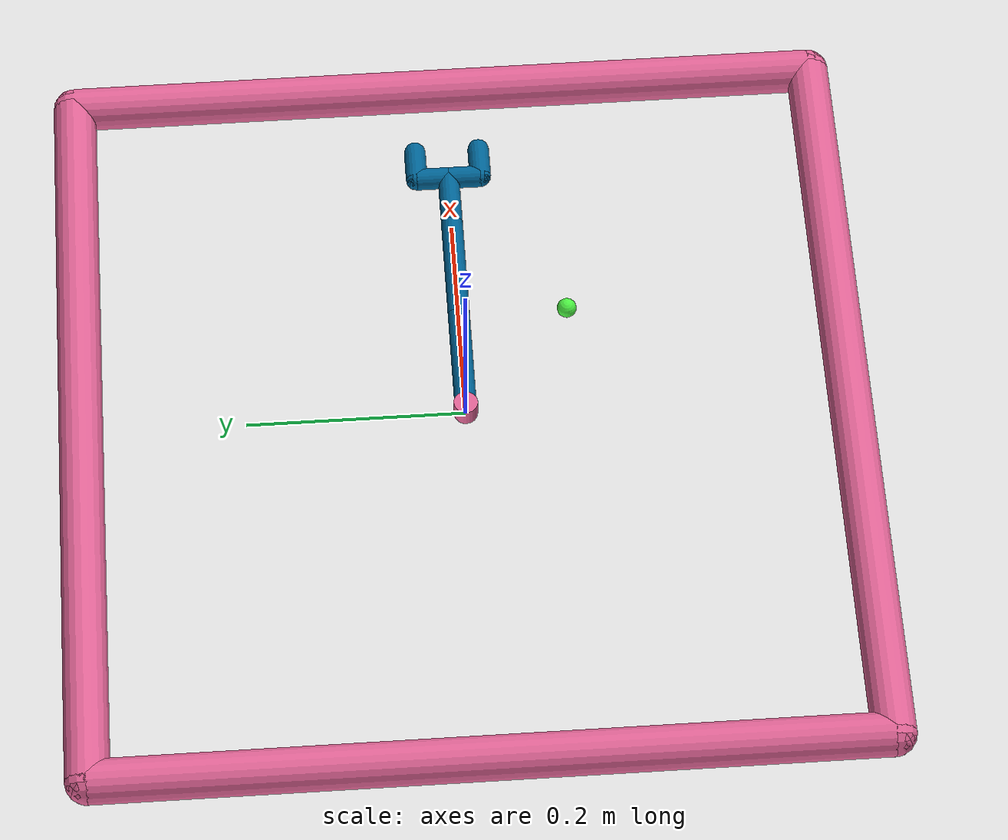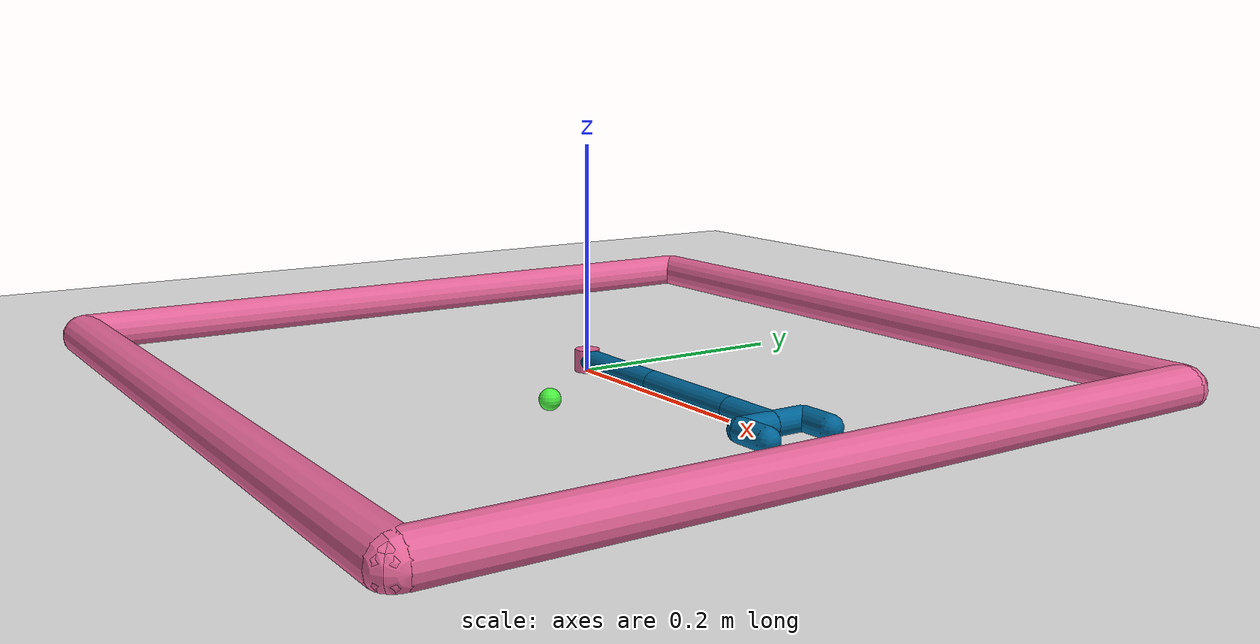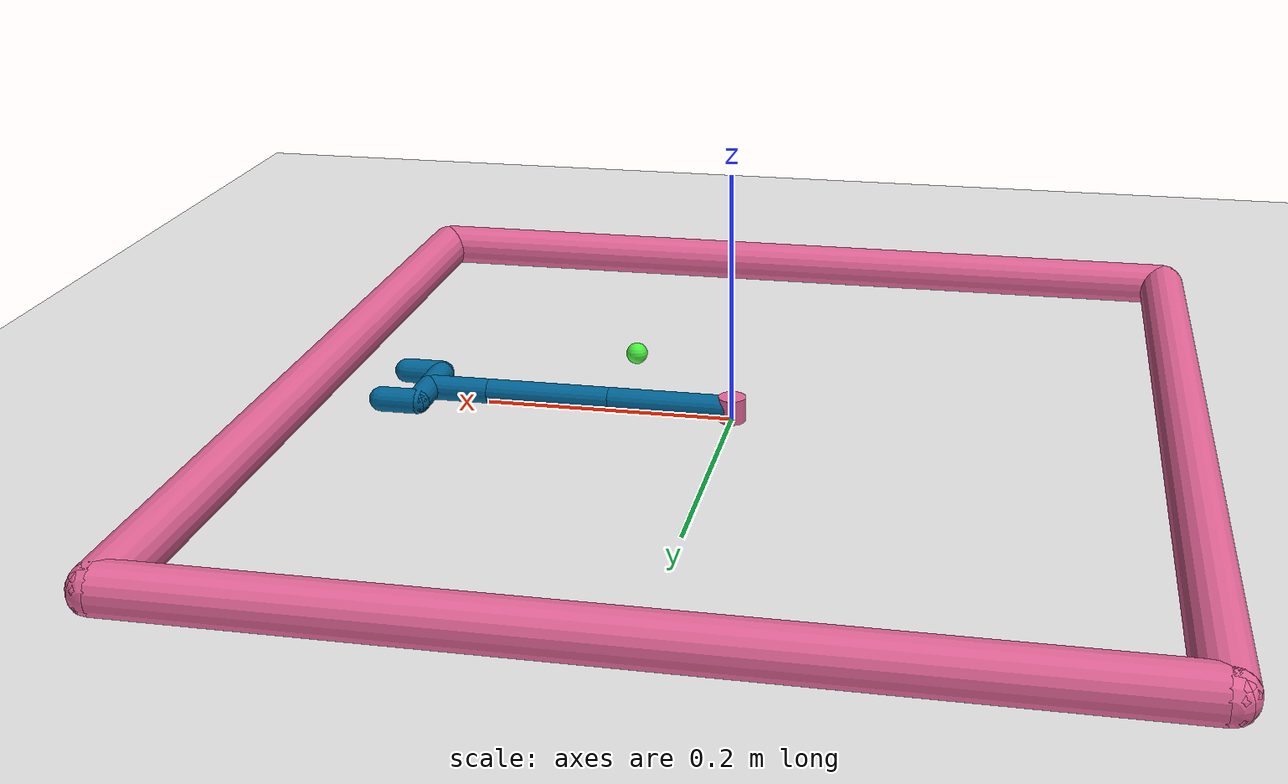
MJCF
<mujoco model="gripper">
	<compiler angle="radian" inertiafromgeom="true"/>
	<default>
		<joint armature="1" damping="1" limited="true"/>
		<geom contype="0" condim="3" friction="1 0.1 0.1" rgba="0.7 0.7 0 1"/>
	</default>
	<option gravity="0 0 -9.81" integrator="RK4" timestep="0.01"/>
	<worldbody>
		<!-- Arena -->
		<geom conaffinity="0" contype="0" name="ground" pos="0 0 0" rgba="0.9 0.9 0.9 1" size="1 1 10" type="plane"/>
		<geom conaffinity="0" fromto="-.35 -.35 .01 .35 -.35 .01" name="sideS" rgba="0.9 0.4 0.6 1" size=".02" type="capsule"/>
		<geom conaffinity="0" fromto=" .35 -.35 .01 .35  .35 .01" name="sideE" rgba="0.9 0.4 0.6 1" size=".02" type="capsule"/>
		<geom conaffinity="0" fromto="-.35  .35 .01 .35  .35 .01" name="sideN" rgba="0.9 0.4 0.6 1" size=".02" type="capsule"/>
		<geom conaffinity="0" fromto="-.35 -.35 .01 -.35 .35 .01" name="sideW" rgba="0.9 0.4 0.6 1" size=".02" type="capsule"/>
		<!-- Arm -->
		<geom conaffinity="0" contype="0" fromto="0 0 0 0 0 0.02" name="root" rgba="0.9 0.4 0.6 1" size=".011" type="cylinder"/>
		<body name="body0" pos="0 0 .01">
			<geom conaffinity="1" contype="1" fromto="0 0 0 0.1 0 0" name="link0" rgba="0.0 0.4 0.6 1" size=".01" type="capsule"/>
			<joint axis="0 0 1" limited="false" name="joint0" pos="0 0 0" type="hinge"/>
			<body name="body1" pos="0.1 0 0">
				<joint axis="0 0 1" limited="true" name="joint1" pos="0 0 0" range="-3.0 3.0" type="hinge"/>
				<geom conaffinity="1" contype="1" fromto="0 0 0 0.1 0 0" name="link1" rgba="0.0 0.4 0.6 1" size=".01" type="capsule"/>
				<body name="body2" pos="0.1 0 0">
					<joint axis="0 0 1" limited="true" name="joint2" pos="0 0 0" range="-3.0 3.0" type="hinge"/>
					<geom fromto="0 0 0 0.05 0 0" name="link2" rgba="0.0 0.4 0.6 1" size=".01" type="capsule"/>
					<body name="gripper_left" pos="0.05 0 0">
						<joint axis="0 0 1" limited="true" name="joint_gripper_left" pos="0 0 0" range="-0.785 0" type="hinge"/>
						<geom conaffinity="1" contype="1" name="gripper_left_1" fromto="0 0 0 0 0.03 0" rgba="0.0 0.4 0.6 1" size=".01" type="capsule"/>
						<geom conaffinity="1" contype="1" name="gripper_left_2" fromto="0 0.03 0 0.03 0.03 0" rgba="0.0 0.4 0.6 1" size=".01" type="capsule"/>
					</body>
					<body name="gripper_right" pos="0.05 0 0">
						<joint axis="0 0 1" limited="true" name="joint_gripper_right" pos="0 0 0" range="0 0.785" type="hinge"/>
						<geom conaffinity="1" contype="1" name="gripper_right_1" fromto="0 0 0 0 -0.03 0" rgba="0.0 0.4 0.6 1" size=".01" type="capsule"/>
						<geom conaffinity="1" contype="1" name="gripper_right_2" fromto="0 -0.03 0 0.03 -0.03 0" rgba="0.0 0.4 0.6 1" size=".01" type="capsule"/>
					</body>
				</body>
			</body>
		</body>
		<!-- Source -->
		<body name="source_spot" pos=".1 -.1 .01">
			<joint armature="0" axis="1 0 0" damping="0" limited="true" name="source_x" pos="0 0 0" range="-.32 .32" ref=".1" stiffness="0" type="slide"/>
			<joint armature="0" axis="0 1 0" damping="0" limited="true" name="source_y" pos="0 0 0" range="-.32 .32" ref="-.1" stiffness="0" type="slide"/>
			<geom conaffinity="1" contype="1" name="source_spot" pos="0 0 0" rgba="0.3 0.96 0.26 1" size=".009" type="sphere"/>
		</body>
		<!-- Target -->
		<body name="target_spot" pos=".1 -.1 .01">
			<joint armature="0" axis="1 0 0" damping="0" limited="true" name="target_x" pos="0 0 0" range="-.32 .32" ref=".1" stiffness="0" type="slide"/>
			<joint armature="0" axis="0 1 0" damping="0" limited="true" name="target_y" pos="0 0 0" range="-.32 .32" ref="-.1" stiffness="0" type="slide"/>
			<geom conaffinity="0" contype="0" name="target_spot" pos="0 0 0" rgba="0.9 0.2 0.2 1" size=".009" type="sphere"/>
		</body>
	</worldbody>
	<actuator>
		<motor ctrllimited="true" ctrlrange="-1.0 1.0" gear="200.0" joint="joint0"/>
		<motor ctrllimited="true" ctrlrange="-1.0 1.0" gear="200.0" joint="joint1"/>
		<motor ctrllimited="true" ctrlrange="-1.0 1.0" gear="200.0" joint="joint2"/>
		<motor ctrllimited="true" ctrlrange="-0.75 0.75" gear="200.0" joint="joint_gripper_left"/>
		<motor ctrllimited="true" ctrlrange="-0.75 0.75" gear="200.0" joint="joint_gripper_right"/>
	</actuator>
</mujoco>
